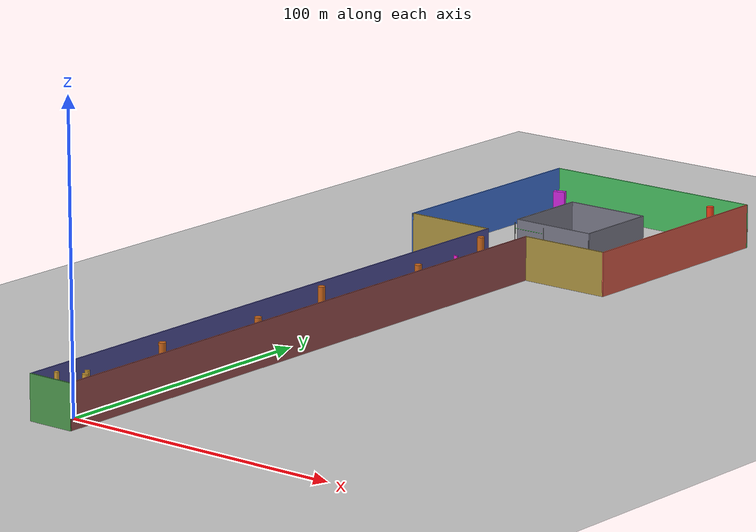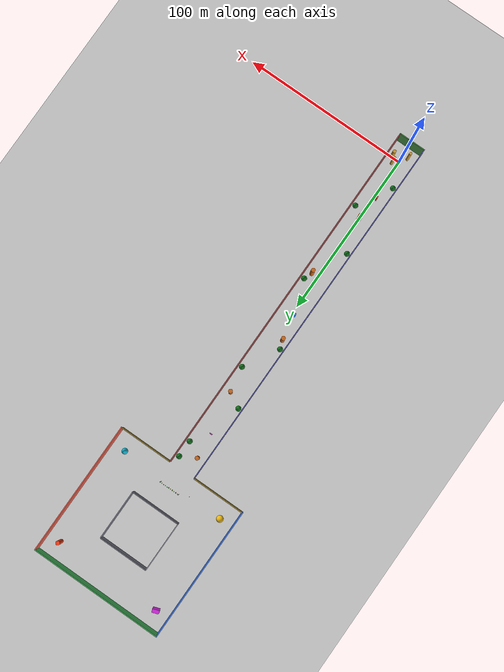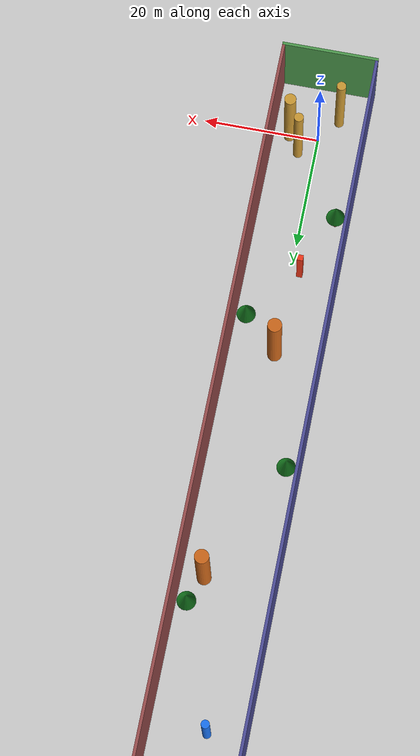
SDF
<?xml version="1.0" encoding="UTF-8"?>
<sdf version="1.9">
  <world name="obstacle_course">
    <physics type="ode">
      <max_step_size>0.004</max_step_size>
      <real_time_factor>1.0</real_time_factor>
      <real_time_update_rate>250</real_time_update_rate>
    </physics>
    <gravity>0 0 -9.8</gravity>
    <magnetic_field>6e-06 2.3e-05 -4.2e-05</magnetic_field>
    <atmosphere type="adiabatic"/>
    <scene>
      <grid>false</grid>
      <ambient>0.4 0.4 0.4 1</ambient>
      <background>0.7 0.7 0.7 1</background>
      <shadows>true</shadows>
    </scene>

    <model name="course_ground">
      <static>true</static>
      <link name="ground_link">
        <collision name="ground_collision">
          <geometry><plane><normal>0 0 1</normal><size>700 700</size></plane></geometry>
        </collision>
        <visual name="ground_visual">
          <geometry><plane><normal>0 0 1</normal><size>700 700</size></plane></geometry>
          <material>
            <ambient>0.8 0.8 0.8 1</ambient>
            <diffuse>0.8 0.8 0.8 1</diffuse>
            <specular>0.8 0.8 0.8 1</specular>
          </material>
        </visual>
      </link>
    </model>

    <light name="sunUTC" type="directional">
      <pose>0 0 500 0 0 0</pose>
      <cast_shadows>true</cast_shadows>
      <intensity>1</intensity>
      <direction>0.001 0.625 -0.78</direction>
      <diffuse>0.904 0.904 0.904 1</diffuse>
      <specular>0.271 0.271 0.271 1</specular>
      <attenuation>
        <range>2000</range><linear>0</linear><constant>1</constant><quadratic>0</quadratic>
      </attenuation>
    </light>

    <spherical_coordinates>
      <surface_model>EARTH_WGS84</surface_model>
      <world_frame_orientation>ENU</world_frame_orientation>
      <latitude_deg>47.397971057728974</latitude_deg>
      <longitude_deg>8.546163739800146</longitude_deg>
      <elevation>0</elevation>
    </spherical_coordinates>

    <model name="corridor_wall_east">
      <pose>8 100 7.5 0 0 0</pose><static>true</static>
      <link name="wall_link">
        <collision name="wall_collision"><geometry><box><size>0.5 220 15</size></box></geometry></collision>
        <visual name="wall_visual">
          <geometry><box><size>0.5 220 15</size></box></geometry>
          <material><ambient>0.6 0.3 0.3 1</ambient><diffuse>0.6 0.3 0.3 1</diffuse></material>
        </visual>
      </link>
    </model>

    <model name="corridor_wall_west">
      <pose>-8 100 7.5 0 0 0</pose><static>true</static>
      <link name="wall_link">
        <collision name="wall_collision"><geometry><box><size>0.5 220 15</size></box></geometry></collision>
        <visual name="wall_visual">
          <geometry><box><size>0.5 220 15</size></box></geometry>
          <material><ambient>0.3 0.3 0.6 1</ambient><diffuse>0.3 0.3 0.6 1</diffuse></material>
        </visual>
      </link>
    </model>

    <model name="corridor_wall_south">
      <pose>0 -10 7.5 0 0 0</pose><static>true</static>
      <link name="wall_link">
        <collision name="wall_collision"><geometry><box><size>16.5 0.5 15</size></box></geometry></collision>
        <visual name="wall_visual">
          <geometry><box><size>16.5 0.5 15</size></box></geometry>
          <material><ambient>0.3 0.6 0.3 1</ambient><diffuse>0.3 0.6 0.3 1</diffuse></material>
        </visual>
      </link>
    </model>

    <model name="corridor_pillar_near_01">
      <pose>5 0 7.5 0 0 0</pose><static>true</static>
      <link name="pillar_link">
        <collision name="pillar_collision"><geometry><cylinder><radius>1.0</radius><length>15</length></cylinder></geometry></collision>
        <visual name="pillar_visual">
          <geometry><cylinder><radius>1.0</radius><length>15</length></cylinder></geometry>
          <material><ambient>0.8 0.6 0.2 1</ambient><diffuse>0.8 0.6 0.2 1</diffuse></material>
        </visual>
      </link>
    </model>

    <model name="corridor_pillar_near_02">
      <pose>3 3 7.5 0 0 0</pose><static>true</static>
      <link name="pillar_link">
        <collision name="pillar_collision"><geometry><cylinder><radius>0.8</radius><length>15</length></cylinder></geometry></collision>
        <visual name="pillar_visual">
          <geometry><cylinder><radius>0.8</radius><length>15</length></cylinder></geometry>
          <material><ambient>0.8 0.6 0.2 1</ambient><diffuse>0.8 0.6 0.2 1</diffuse></material>
        </visual>
      </link>
    </model>

    <model name="corridor_pillar_near_03">
      <pose>-3 -4 7.5 0 0 0</pose><static>true</static>
      <link name="pillar_link">
        <collision name="pillar_collision"><geometry><cylinder><radius>0.8</radius><length>15</length></cylinder></geometry></collision>
        <visual name="pillar_visual">
          <geometry><cylinder><radius>0.8</radius><length>15</length></cylinder></geometry>
          <material><ambient>0.8 0.6 0.2 1</ambient><diffuse>0.8 0.6 0.2 1</diffuse></material>
        </visual>
      </link>
    </model>

    <model name="corridor_pillar_route_040m">
      <pose>0 40 7.5 0 0 0</pose><static>true</static>
      <link name="pillar_link">
        <collision name="pillar_collision"><geometry><cylinder><radius>1.2</radius><length>15</length></cylinder></geometry></collision>
        <visual name="pillar_visual"><geometry><cylinder><radius>1.2</radius><length>15</length></cylinder></geometry><material><ambient>0.8 0.4 0.1 1</ambient><diffuse>0.8 0.4 0.1 1</diffuse></material></visual>
      </link>
    </model>
    <model name="corridor_pillar_route_080m">
      <pose>4 80 7.5 0 0 0</pose><static>true</static>
      <link name="pillar_link">
        <collision name="pillar_collision"><geometry><cylinder><radius>1.2</radius><length>15</length></cylinder></geometry></collision>
        <visual name="pillar_visual"><geometry><cylinder><radius>1.2</radius><length>15</length></cylinder></geometry><material><ambient>0.8 0.4 0.1 1</ambient><diffuse>0.8 0.4 0.1 1</diffuse></material></visual>
      </link>
    </model>
    <model name="corridor_pillar_route_120m">
      <pose>-4 120 7.5 0 0 0</pose><static>true</static>
      <link name="pillar_link">
        <collision name="pillar_collision"><geometry><cylinder><radius>1.2</radius><length>15</length></cylinder></geometry></collision>
        <visual name="pillar_visual"><geometry><cylinder><radius>1.2</radius><length>15</length></cylinder></geometry><material><ambient>0.8 0.4 0.1 1</ambient><diffuse>0.8 0.4 0.1 1</diffuse></material></visual>
      </link>
    </model>
    <model name="corridor_pillar_route_160m">
      <pose>3 160 7.5 0 0 0</pose><static>true</static>
      <link name="pillar_link">
        <collision name="pillar_collision"><geometry><cylinder><radius>1.2</radius><length>15</length></cylinder></geometry></collision>
        <visual name="pillar_visual"><geometry><cylinder><radius>1.2</radius><length>15</length></cylinder></geometry><material><ambient>0.8 0.4 0.1 1</ambient><diffuse>0.8 0.4 0.1 1</diffuse></material></visual>
      </link>
    </model>
    <model name="corridor_pillar_route_200m">
      <pose>-3 200 7.5 0 0 0</pose><static>true</static>
      <link name="pillar_link">
        <collision name="pillar_collision"><geometry><cylinder><radius>1.2</radius><length>15</length></cylinder></geometry></collision>
        <visual name="pillar_visual"><geometry><cylinder><radius>1.2</radius><length>15</length></cylinder></geometry><material><ambient>0.8 0.4 0.1 1</ambient><diffuse>0.8 0.4 0.1 1</diffuse></material></visual>
      </link>
    </model>

    <!-- Static tree includes use zone/type/side/station naming. -->
    <include><uri>model://map_tree</uri><name>corridor_tree_west_015m</name><pose>-5.8 15 0 0 0 0</pose></include>
    <include><uri>model://map_tree</uri><name>corridor_tree_east_035m</name><pose>5.8 35 0 0 0 0</pose></include>
    <include><uri>model://map_tree</uri><name>corridor_tree_west_060m</name><pose>-5.8 60 0 0 0 0</pose></include>
    <include><uri>model://map_tree</uri><name>corridor_tree_east_085m</name><pose>5.8 85 0 0 0 0</pose></include>
    <include><uri>model://map_tree</uri><name>corridor_tree_west_125m</name><pose>-5.8 125 0 0 0 0</pose></include>
    <include><uri>model://map_tree</uri><name>corridor_tree_east_145m</name><pose>5.8 145 0 0 0 0</pose></include>
    <include><uri>model://map_tree</uri><name>corridor_tree_west_165m</name><pose>-5.8 165 0 0 0 0</pose></include>
    <include><uri>model://map_tree</uri><name>corridor_tree_east_195m</name><pose>5.8 195 0 0 0 0</pose></include>
    <include><uri>model://map_tree</uri><name>corridor_tree_east_205m</name><pose>5.8 205 0 0 0 0</pose></include>

    <model name="corridor_mover_025m_slow_crate">
      <pose>-1.5 25 4.0 0 0 0</pose>
      <link name="moving_target_link">
        <gravity>false</gravity>
        <inertial><mass>18</mass><inertia><ixx>97.5</ixx><ixy>0</ixy><ixz>0</ixz><iyy>97.5</iyy><iyz>0</iyz><izz>3.0</izz></inertia></inertial>
        <velocity_decay><linear>0.12</linear><angular>2.0</angular></velocity_decay>
        <collision name="target_collision"><geometry><box><size>1 1 8</size></box></geometry></collision>
        <visual name="target_visual"><geometry><box><size>1 1 8</size></box></geometry><material><ambient>0.75 0.15 0.08 1</ambient><diffuse>0.95 0.22 0.10 1</diffuse></material></visual>
      </link>
      <plugin filename="gz-sim-trajectory-follower-system" name="gz::sim::systems::TrajectoryFollower">
        <link_name>moving_target_link</link_name><loop>true</loop><force>22</force><torque>55</torque>
        <range_tolerance>0.3</range_tolerance><zero_vel_on_bearing_reached>true</zero_vel_on_bearing_reached>
        <line><direction>0</direction><length>3</length></line>
      </plugin>
    </model>

    <model name="corridor_mover_105m_medium_barrel">
      <pose>-1.5 105 5.0 0 0 0</pose>
      <link name="moving_target_link">
        <gravity>false</gravity>
        <inertial><mass>12</mass><inertia><ixx>101.47</ixx><ixy>0</ixy><ixz>0</ixz><iyy>101.47</iyy><iyz>0</iyz><izz>2.94</izz></inertia></inertial>
        <velocity_decay><linear>0.10</linear><angular>2.0</angular></velocity_decay>
        <collision name="target_collision"><geometry><cylinder><radius>0.7</radius><length>10</length></cylinder></geometry></collision>
        <visual name="target_visual"><geometry><cylinder><radius>0.7</radius><length>10</length></cylinder></geometry><material><ambient>0.08 0.30 0.75 1</ambient><diffuse>0.10 0.45 0.95 1</diffuse></material></visual>
      </link>
      <plugin filename="gz-sim-trajectory-follower-system" name="gz::sim::systems::TrajectoryFollower">
        <link_name>moving_target_link</link_name><loop>true</loop><force>24</force><torque>55</torque>
        <range_tolerance>0.3</range_tolerance><zero_vel_on_bearing_reached>true</zero_vel_on_bearing_reached>
        <line><direction>0</direction><length>3</length></line>
      </plugin>
    </model>

    <model name="corridor_mover_185m_fast_panel">
      <pose>-1.5 185 6.0 0 0 0</pose>
      <link name="moving_target_link">
        <gravity>false</gravity>
        <inertial><mass>10</mass><inertia><ixx>120.21</ixx><ixy>0</ixy><ixz>0</ixz><iyy>121.88</iyy><iyz>0</iyz><izz>2.08</izz></inertia></inertial>
        <velocity_decay><linear>0.08</linear><angular>2.0</angular></velocity_decay>
        <collision name="target_collision"><geometry><box><size>1.5 0.5 12</size></box></geometry></collision>
        <visual name="target_visual"><geometry><box><size>1.5 0.5 12</size></box></geometry><material><ambient>0.70 0.08 0.65 1</ambient><diffuse>0.95 0.12 0.85 1</diffuse></material></visual>
      </link>
      <plugin filename="gz-sim-trajectory-follower-system" name="gz::sim::systems::TrajectoryFollower">
        <link_name>moving_target_link</link_name><loop>true</loop><force>30</force><torque>55</torque>
        <range_tolerance>0.3</range_tolerance><zero_vel_on_bearing_reached>true</zero_vel_on_bearing_reached>
        <line><direction>0</direction><length>3</length></line>
      </plugin>
    </model>

    <include>
      <uri>model://map_loop_arena</uri>
      <name>loop_arena_square_080m</name>
      <pose>0 210 0 0 0 0</pose>
    </include>
    <include>
      <uri>model://wire_test_gate</uri>
      <name>loop_wire_gate_222m</name>
      <pose>0 222 0 0 0 0</pose>
    </include>
  </world>
</sdf>

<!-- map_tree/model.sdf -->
<sdf version="1.9">
  <model name="map_tree">
    <static>true</static>
    <link name="tree_link">
      <collision name="trunk_collision">
        <pose>0 0 2.5 0 0 0</pose>
        <geometry>
          <cylinder>
            <radius>0.28</radius>
            <length>5.0</length>
          </cylinder>
        </geometry>
      </collision>
      <visual name="trunk_visual">
        <pose>0 0 2.5 0 0 0</pose>
        <geometry>
          <cylinder>
            <radius>0.28</radius>
            <length>5.0</length>
          </cylinder>
        </geometry>
        <material>
          <ambient>0.30 0.16 0.06 1</ambient>
          <diffuse>0.42 0.24 0.08 1</diffuse>
          <specular>0.05 0.03 0.01 1</specular>
        </material>
      </visual>

      <collision name="canopy_collision">
        <pose>0 0 5.5 0 0 0</pose>
        <geometry>
          <cone>
            <radius>1.6</radius>
            <length>4.0</length>
          </cone>
        </geometry>
      </collision>
      <visual name="canopy_visual">
        <pose>0 0 5.5 0 0 0</pose>
        <geometry>
          <cone>
            <radius>1.6</radius>
            <length>4.0</length>
          </cone>
        </geometry>
        <material>
          <ambient>0.04 0.26 0.06 1</ambient>
          <diffuse>0.08 0.48 0.12 1</diffuse>
          <specular>0.02 0.08 0.02 1</specular>
        </material>
      </visual>
    </link>
  </model>
</sdf>

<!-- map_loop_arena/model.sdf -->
<sdf version="1.9">
  <model name="map_loop_arena">
    <static>true</static>
    <link name="arena_link">
      <collision name="outer_west_collision">
        <pose>-40 40 7.5 0 0 0</pose>
        <geometry><box><size>0.5 80.5 15</size></box></geometry>
      </collision>
      <visual name="outer_west_visual">
        <pose>-40 40 7.5 0 0 0</pose>
        <geometry><box><size>0.5 80.5 15</size></box></geometry>
        <material><ambient>0.18 0.32 0.62 1</ambient><diffuse>0.25 0.45 0.85 1</diffuse></material>
      </visual>
      <collision name="outer_east_collision">
        <pose>40 40 7.5 0 0 0</pose>
        <geometry><box><size>0.5 80.5 15</size></box></geometry>
      </collision>
      <visual name="outer_east_visual">
        <pose>40 40 7.5 0 0 0</pose>
        <geometry><box><size>0.5 80.5 15</size></box></geometry>
        <material><ambient>0.62 0.25 0.20 1</ambient><diffuse>0.85 0.35 0.28 1</diffuse></material>
      </visual>
      <collision name="outer_north_collision">
        <pose>0 80 7.5 0 0 0</pose>
        <geometry><box><size>80.5 0.5 15</size></box></geometry>
      </collision>
      <visual name="outer_north_visual">
        <pose>0 80 7.5 0 0 0</pose>
        <geometry><box><size>80.5 0.5 15</size></box></geometry>
        <material><ambient>0.20 0.55 0.28 1</ambient><diffuse>0.28 0.75 0.38 1</diffuse></material>
      </visual>
      <collision name="outer_south_west_collision">
        <pose>-24 0 7.5 0 0 0</pose>
        <geometry><box><size>32 0.5 15</size></box></geometry>
      </collision>
      <visual name="outer_south_west_visual">
        <pose>-24 0 7.5 0 0 0</pose>
        <geometry><box><size>32 0.5 15</size></box></geometry>
        <material><ambient>0.45 0.38 0.18 1</ambient><diffuse>0.68 0.58 0.25 1</diffuse></material>
      </visual>
      <collision name="outer_south_east_collision">
        <pose>24 0 7.5 0 0 0</pose>
        <geometry><box><size>32 0.5 15</size></box></geometry>
      </collision>
      <visual name="outer_south_east_visual">
        <pose>24 0 7.5 0 0 0</pose>
        <geometry><box><size>32 0.5 15</size></box></geometry>
        <material><ambient>0.45 0.38 0.18 1</ambient><diffuse>0.68 0.58 0.25 1</diffuse></material>
      </visual>

      <!-- Central island: x=[-15,15], y=[25,55] m. -->
      <collision name="island_west_collision">
        <pose>-15 40 6 0 0 0</pose>
        <geometry><box><size>0.5 30 12</size></box></geometry>
      </collision>
      <visual name="island_west_visual">
        <pose>-15 40 6 0 0 0</pose>
        <geometry><box><size>0.5 30 12</size></box></geometry>
        <material><ambient>0.30 0.30 0.34 1</ambient><diffuse>0.48 0.48 0.54 1</diffuse></material>
      </visual>
      <collision name="island_east_collision">
        <pose>15 40 6 0 0 0</pose>
        <geometry><box><size>0.5 30 12</size></box></geometry>
      </collision>
      <visual name="island_east_visual">
        <pose>15 40 6 0 0 0</pose>
        <geometry><box><size>0.5 30 12</size></box></geometry>
        <material><ambient>0.30 0.30 0.34 1</ambient><diffuse>0.48 0.48 0.54 1</diffuse></material>
      </visual>
      <collision name="island_south_collision">
        <pose>0 25 6 0 0 0</pose>
        <geometry><box><size>30 0.5 12</size></box></geometry>
      </collision>
      <visual name="island_south_visual">
        <pose>0 25 6 0 0 0</pose>
        <geometry><box><size>30 0.5 12</size></box></geometry>
        <material><ambient>0.30 0.30 0.34 1</ambient><diffuse>0.48 0.48 0.54 1</diffuse></material>
      </visual>
      <collision name="island_north_collision">
        <pose>0 55 6 0 0 0</pose>
        <geometry><box><size>30 0.5 12</size></box></geometry>
      </collision>
      <visual name="island_north_visual">
        <pose>0 55 6 0 0 0</pose>
        <geometry><box><size>30 0.5 12</size></box></geometry>
        <material><ambient>0.30 0.30 0.34 1</ambient><diffuse>0.48 0.48 0.54 1</diffuse></material>
      </visual>

      <!-- Asymmetric landmarks reduce square-course geometric ambiguity. -->
      <collision name="north_east_tower_collision">
        <pose>32 70 7.5 0 0 0</pose>
        <geometry><cylinder><radius>1.2</radius><length>15</length></cylinder></geometry>
      </collision>
      <visual name="north_east_tower_visual">
        <pose>32 70 7.5 0 0 0</pose>
        <geometry><cylinder><radius>1.2</radius><length>15</length></cylinder></geometry>
        <material><ambient>0.75 0.18 0.08 1</ambient><diffuse>0.95 0.25 0.10 1</diffuse></material>
      </visual>
      <collision name="north_west_block_collision">
        <pose>-32 70 5 0 0 0.35</pose>
        <geometry><box><size>4 2 10</size></box></geometry>
      </collision>
      <visual name="north_west_block_visual">
        <pose>-32 70 5 0 0 0.35</pose>
        <geometry><box><size>4 2 10</size></box></geometry>
        <material><ambient>0.58 0.10 0.62 1</ambient><diffuse>0.82 0.15 0.88 1</diffuse></material>
      </visual>
      <collision name="south_east_cone_collision">
        <pose>32 10 5 0 0 0</pose>
        <geometry><cone><radius>1.8</radius><length>10</length></cone></geometry>
      </collision>
      <visual name="south_east_cone_visual">
        <pose>32 10 5 0 0 0</pose>
        <geometry><cone><radius>1.8</radius><length>10</length></cone></geometry>
        <material><ambient>0.08 0.55 0.65 1</ambient><diffuse>0.10 0.78 0.90 1</diffuse></material>
      </visual>
      <collision name="south_west_sphere_collision">
        <pose>-32 10 4 0 0 0</pose>
        <geometry><sphere><radius>2</radius></sphere></geometry>
      </collision>
      <visual name="south_west_sphere_visual">
        <pose>-32 10 4 0 0 0</pose>
        <geometry><sphere><radius>2</radius></sphere></geometry>
        <material><ambient>0.68 0.52 0.06 1</ambient><diffuse>0.92 0.72 0.08 1</diffuse></material>
      </visual>
    </link>
  </model>
</sdf>

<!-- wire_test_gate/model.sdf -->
<sdf version="1.9">
  <model name="wire_test_gate">
    <static>true</static>
    <link name="wire_gate_link">
      <!-- Support posts: 0.24 m diameter, 15 m high, spaced 12 m apart. -->
      <collision name="west_post_collision">
        <pose>-6 0 7.5 0 0 0</pose>
        <geometry><cylinder><radius>0.12</radius><length>15</length></cylinder></geometry>
      </collision>
      <visual name="west_post_visual">
        <pose>-6 0 7.5 0 0 0</pose>
        <geometry><cylinder><radius>0.12</radius><length>15</length></cylinder></geometry>
        <material><ambient>0.25 0.25 0.25 1</ambient><diffuse>0.45 0.45 0.45 1</diffuse></material>
      </visual>
      <collision name="east_post_collision">
        <pose>6 0 7.5 0 0 0</pose>
        <geometry><cylinder><radius>0.12</radius><length>15</length></cylinder></geometry>
      </collision>
      <visual name="east_post_visual">
        <pose>6 0 7.5 0 0 0</pose>
        <geometry><cylinder><radius>0.12</radius><length>15</length></cylinder></geometry>
        <material><ambient>0.25 0.25 0.25 1</ambient><diffuse>0.45 0.45 0.45 1</diffuse></material>
      </visual>

      <collision name="wire_20mm_collision">
        <pose>0 0 5 0 1.57079632679 0</pose>
        <geometry><cylinder><radius>0.01</radius><length>12</length></cylinder></geometry>
      </collision>
      <visual name="wire_20mm_visual">
        <pose>0 0 5 0 1.57079632679 0</pose>
        <geometry><cylinder><radius>0.01</radius><length>12</length></cylinder></geometry>
        <material><ambient>0.85 0.08 0.08 1</ambient><diffuse>1.0 0.10 0.10 1</diffuse></material>
      </visual>
      <collision name="wire_50mm_collision">
        <pose>0 0 9 0 1.57079632679 0</pose>
        <geometry><cylinder><radius>0.025</radius><length>12</length></cylinder></geometry>
      </collision>
      <visual name="wire_50mm_visual">
        <pose>0 0 9 0 1.57079632679 0</pose>
        <geometry><cylinder><radius>0.025</radius><length>12</length></cylinder></geometry>
        <material><ambient>0.85 0.55 0.05 1</ambient><diffuse>1.0 0.72 0.08 1</diffuse></material>
      </visual>
      <collision name="wire_100mm_collision">
        <pose>0 0 13 0 1.57079632679 0</pose>
        <geometry><cylinder><radius>0.05</radius><length>12</length></cylinder></geometry>
      </collision>
      <visual name="wire_100mm_visual">
        <pose>0 0 13 0 1.57079632679 0</pose>
        <geometry><cylinder><radius>0.05</radius><length>12</length></cylinder></geometry>
        <material><ambient>0.08 0.65 0.12 1</ambient><diffuse>0.10 0.90 0.15 1</diffuse></material>
      </visual>

      <!-- Graduated small-object array: 40, 80, and 150 mm diameters. -->
      <collision name="rod_40mm_collision">
        <pose>-11.5 -2 2 0 0 0</pose>
        <geometry><cylinder><radius>0.02</radius><length>4</length></cylinder></geometry>
      </collision>
      <visual name="rod_40mm_visual">
        <pose>-11.5 -2 2 0 0 0</pose>
        <geometry><cylinder><radius>0.02</radius><length>4</length></cylinder></geometry>
        <material><ambient>0.85 0.08 0.08 1</ambient><diffuse>1.0 0.10 0.10 1</diffuse></material>
      </visual>
      <collision name="rod_80mm_collision">
        <pose>-11.5 0 2 0 0 0</pose>
        <geometry><cylinder><radius>0.04</radius><length>4</length></cylinder></geometry>
      </collision>
      <visual name="rod_80mm_visual">
        <pose>-11.5 0 2 0 0 0</pose>
        <geometry><cylinder><radius>0.04</radius><length>4</length></cylinder></geometry>
        <material><ambient>0.85 0.55 0.05 1</ambient><diffuse>1.0 0.72 0.08 1</diffuse></material>
      </visual>
      <collision name="rod_150mm_collision">
        <pose>-11.5 2 2 0 0 0</pose>
        <geometry><cylinder><radius>0.075</radius><length>4</length></cylinder></geometry>
      </collision>
      <visual name="rod_150mm_visual">
        <pose>-11.5 2 2 0 0 0</pose>
        <geometry><cylinder><radius>0.075</radius><length>4</length></cylinder></geometry>
        <material><ambient>0.08 0.65 0.12 1</ambient><diffuse>0.10 0.90 0.15 1</diffuse></material>
      </visual>
    </link>
  </model>
</sdf>
